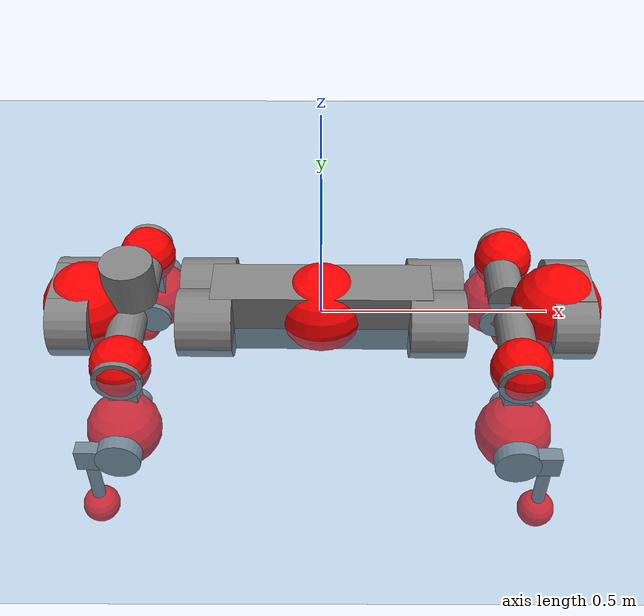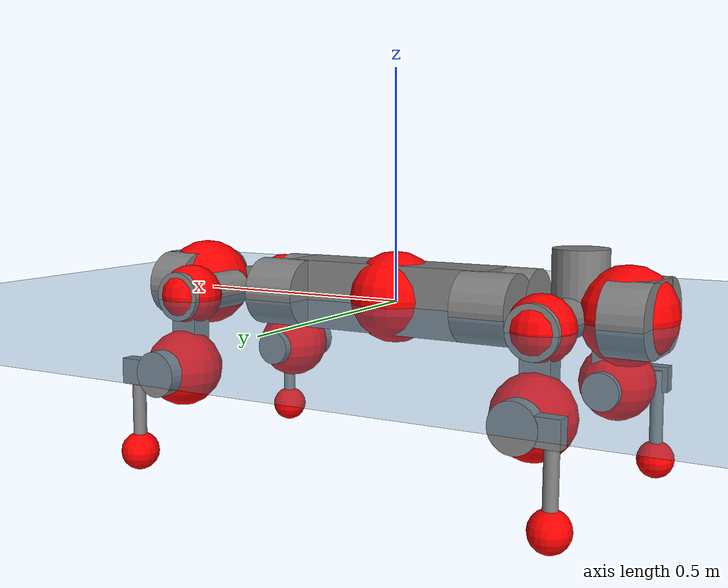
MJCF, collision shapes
<mujoco model="anymal_c">
  <compiler angle="radian" assetdir="assets" balanceinertia="true" inertiafromgeom="false"/>

  <option timestep="0.005" density="1.2" viscosity="2e-05"/>

  <size nkey="1"/>

  <visual>
    <quality shadowsize="8192"/>
    <map shadowclip="0.5"/>
  </visual>

  <default>
    <default class="/">
      <material specular="0" shininess="0.25"/>
      <geom contype="0" conaffinity="0" group="1" solref="-1000 -80"/>
      <site size="0.01 0.005 0.005" group="5"/>
      <general forcelimited="true" forcerange="-80 80" biastype="affine" gainprm="80" biasprm="0 -80 -2"/>
      <default class="anymal_c">
        <joint armature="0.01" damping="0.01" frictionloss="0.1"/>
        <default class="visual">
          <geom type="mesh" group="2"/>
          <default class="visual_zflip"/>
        </default>
        <default class="collision">
          <geom type="cylinder" group="3"/>
          <default class="foot">
            <geom size="0.03 0 0" type="sphere" condim="6" priority="1" friction="0.8 0.02 0.01" solimp="0.015 1 0.03"/>
          </default>
        </default>
      </default>
      <default class="reward_collision_sphere">
        <geom group="5" rgba="1 0 0 1"/>
      </default>
    </default>
  </default>

  <asset>
    <texture type="skybox" colorspace="auto" name="//unnamed_texture_0" builtin="gradient" rgb1="0.95 0.95 0.95" rgb2="0.95 0.95 0.95" width="100" height="600"/>
    <texture type="2d" colorspace="auto" name="texplane" builtin="checker" rgb1="0.345 0.575 0.748" rgb2="0.345 0.575 0.748" markrgb="1 1 1" width="512" height="512"/>
    <texture type="2d" colorspace="linear" name="base" file="base.png"/>
    <texture type="2d" colorspace="linear" name="top_shell" file="top_shell.png"/>
    <texture type="2d" colorspace="linear" name="bottom_shell" file="bottom_shell.png"/>
    <texture type="2d" colorspace="linear" name="remote" file="remote.png"/>
    <texture type="2d" colorspace="linear" name="hatch" file="hatch.png"/>
    <texture type="2d" colorspace="linear" name="handle" file="handle.png"/>
    <texture type="2d" colorspace="linear" name="face" file="face.png"/>
    <texture type="2d" colorspace="linear" name="battery" file="battery.png"/>
    <texture type="2d" colorspace="linear" name="lidar_cage" file="lidar_cage.png"/>
    <texture type="2d" colorspace="linear" name="depth_camera" file="depth_camera.png"/>
    <texture type="2d" colorspace="linear" name="wide_angle_camera" file="wide_angle_camera.png"/>
    <texture type="2d" colorspace="linear" name="lidar" file="lidar.png"/>
    <texture type="2d" colorspace="linear" name="drive" file="drive.png"/>
    <texture type="2d" colorspace="linear" name="hip_l" file="hip_l.png"/>
    <texture type="2d" colorspace="linear" name="shank_l" file="shank_l.png"/>
    <texture type="2d" colorspace="linear" name="foot" file="foot.png"/>
    <texture type="2d" colorspace="linear" name="thigh" file="thigh.png"/>
    <texture type="2d" colorspace="linear" name="shank_r" file="shank_r.png"/>
    <texture type="2d" colorspace="linear" name="hip_r" file="hip_r.png"/>
    <material name="MatPlane" class="/" texture="texplane" texuniform="true" texrepeat="2 2" specular="0.9" shininess="0.5"/>
    <material name="black_plastic" class="/" rgba="0.007 0.007 0.007 1"/>
    <material name="green" class="/" rgba="0.052 0.178 0.033 1"/>
    <material name="red" class="/" rgba="0.178 0.006 0.005 1"/>
    <material name="yellow" class="/" rgba="0.178 0.119 0.006 1"/>
    <material name="lwl" class="/" rgba="0.8 0.8 0.8 1"/>
    <material name="base" class="/" texture="base"/>
    <material name="top_shell" class="/" texture="top_shell"/>
    <material name="bottom_shell" class="/" texture="bottom_shell"/>
    <material name="hip_l" class="/" texture="hip_l"/>
    <material name="thigh" class="/" texture="thigh"/>
    <material name="shank_l" class="/" texture="shank_l"/>
    <material name="foot" class="/" texture="foot"/>
    <material name="hip_r" class="/" texture="hip_r"/>
    <material name="shank" class="/" texture="shank_r"/>
    <material name="hatch" class="/" texture="hatch"/>
    <material name="remote" class="/" texture="remote"/>
    <material name="handle" class="/" texture="handle"/>
    <material name="face" class="/" texture="face"/>
    <material name="depth_camera" class="/" texture="depth_camera"/>
    <material name="wide_angle_camera" class="/" texture="wide_angle_camera"/>
    <material name="battery" class="/" texture="battery"/>
    <material name="lidar_cage" class="/" texture="lidar_cage"/>
    <material name="lidar" class="/" texture="lidar"/>
    <material name="drive" class="/" texture="drive"/>
    <mesh name="base_0" class="/" file="base_0.obj"/>
    <mesh name="base_1" class="/" file="base_1.obj"/>
    <mesh name="base_2" class="/" file="base_2.obj"/>
    <mesh name="base_3" class="/" file="base_3.obj"/>
    <mesh name="base_4" class="/" file="base_4.obj"/>
    <mesh name="base_5" class="/" file="base_5.obj"/>
    <mesh name="top_shell" class="/" file="top_shell.obj"/>
    <mesh name="bottom_shell" class="/" file="bottom_shell.obj"/>
    <mesh name="remote" class="/" file="remote.obj"/>
    <mesh name="handle" class="/" file="handle.obj"/>
    <mesh name="face" class="/" file="face.obj"/>
    <mesh name="wide_angle_camera" class="/" file="wide_angle_camera.obj"/>
    <mesh name="depth_camera" class="/" file="depth_camera.obj"/>
    <mesh name="battery" class="/" file="battery.obj"/>
    <mesh name="lidar_cage" class="/" file="lidar_cage.obj"/>
    <mesh name="lidar" class="/" file="lidar.obj"/>
    <mesh name="drive" class="/" file="drive.obj"/>
    <mesh name="hip_l" class="/" file="hip_l.obj"/>
    <mesh name="thigh" class="/" file="thigh.obj"/>
    <mesh name="shank_l" class="/" file="shank_l.obj"/>
    <mesh name="foot" class="/" file="foot.obj"/>
    <mesh name="hip_r" class="/" file="hip_r.obj"/>
    <mesh name="hatch" class="/" file="hatch.obj"/>
    <mesh name="shank_r" class="/" file="shank_r.obj"/>
  </asset>

  <worldbody>
    <geom name="floor" class="/" size="100 100 0.125" type="plane" group="0" material="MatPlane"/>
    <light name="toplight_shadow" class="/" pos="0 0 5" dir="0.0990148 0.0990148 -0.990148" type="directional" ambient="0.04 0.04 0.04" diffuse="0.55 0.55 0.55" specular="0.12 0.12 0.12"/>
    <light name="toplight_fill" class="/" pos="0 0 5" dir="0.0990148 0.0990148 -0.990148" type="directional" castshadow="false" ambient="0.04 0.04 0.04" diffuse="0.3 0.3 0.3" specular="0.08 0.08 0.08"/>
    <body name="trunk" childclass="anymal_c" pos="0.000867569 0.00123926 0.0107786" quat="0.999988 0.00096679 -0.000955697 -0.00469148">
      <inertial pos="0.00395185 -0.00799489 0.0260141" quat="0.490851 0.53868 0.476303 0.491959" mass="10.0239" diaginertia="1.10071 0.128939 0.0115542"/>
      <joint name="//unnamed_joint_0" type="free" armature="0" damping="0" frictionloss="0"/>
      <geom name="//unnamed_geom_1" class="visual" material="green" mesh="base_0"/>
      <geom name="//unnamed_geom_2" class="visual" material="yellow" mesh="base_1"/>
      <geom name="//unnamed_geom_3" class="visual" material="red" mesh="base_2"/>
      <geom name="//unnamed_geom_4" class="visual" material="black_plastic" mesh="base_3"/>
      <geom name="//unnamed_geom_5" class="visual" material="lwl" mesh="base_4"/>
      <geom name="//unnamed_geom_6" class="visual" material="base" mesh="base_5"/>
      <geom name="trunk_1" class="collision" size="0.239355 0.0577753 0.0742825" type="box"/>
      <geom name="trunk_2" class="collision" size="0.0742825 0.0598387" pos="0.250738 0.0526532 0" quat="0.707107 0 0.707107 0"/>
      <geom name="trunk_3" class="collision" size="0.0742825 0.0598387" pos="-0.250738 0.0526532 0" quat="0.707107 0 0.707107 0"/>
      <geom name="trunk_4" class="collision" size="0.0742825 0.0598387" pos="0.250738 -0.0526532 0" quat="0.707107 0 0.707107 0"/>
      <geom name="trunk_5" class="collision" size="0.0742825 0.0598387" pos="-0.250738 -0.0526532 0" quat="0.707107 0 0.707107 0"/>
      <geom name="//unnamed_geom_12" class="visual" material="top_shell" mesh="top_shell"/>
      <geom name="//unnamed_geom_13" class="visual" material="bottom_shell" mesh="bottom_shell"/>
      <geom name="//unnamed_geom_14" class="visual" material="remote" mesh="remote"/>
      <geom name="//unnamed_geom_15" class="visual" material="handle" mesh="handle"/>
      <geom name="//unnamed_geom_16" class="visual" pos="0.477844 0 0" quat="1 0 0 0" material="face" mesh="face"/>
      <geom name="trunk_6" class="collision" size="0.0453949 0.0577753 0.0742825" pos="0.541249 0 0" type="box"/>
      <geom name="//unnamed_geom_18" class="collision" size="0.0742825 0.0453949" pos="0.541249 0.0526532 0" quat="0.707107 0 0.707107 0"/>
      <geom name="//unnamed_geom_19" class="collision" size="0.0742825 0.0453949" pos="0.541249 -0.0526532 0" quat="0.707107 0 0.707107 0"/>
      <geom name="//unnamed_geom_20" class="visual" pos="0.532175 0 -0.0122541" quat="0.965926 0 0.258819 0" material="depth_camera" mesh="depth_camera"/>
      <geom name="//unnamed_geom_21" class="visual" pos="0.591397 0 0.008549" material="wide_angle_camera" mesh="wide_angle_camera"/>
      <geom name="//unnamed_geom_22" class="visual_zflip" pos="-0.477844 0 0" quat="0 0 0 1" material="face" mesh="face"/>
      <geom name="trunk_7" class="collision" size="0.0453949 0.0577753 0.0742825" pos="-0.541249 0 0" quat="0 0 0 1" type="box"/>
      <geom name="//unnamed_geom_24" class="collision" size="0.0742825 0.0453949" pos="-0.541249 -0.0526532 0" quat="0 -0.707107 0 0.707107"/>
      <geom name="//unnamed_geom_25" class="collision" size="0.0742825 0.0453949" pos="-0.541249 0.0526532 0" quat="0 -0.707107 0 0.707107"/>
      <geom name="//unnamed_geom_26" class="visual" pos="-0.532175 0 -0.0122541" quat="0 -0.258819 0 0.965926" material="depth_camera" mesh="depth_camera"/>
      <geom name="//unnamed_geom_27" class="visual_zflip" pos="-0.591397 0 0.008549" quat="0 0 0 1" material="wide_angle_camera" mesh="wide_angle_camera"/>
      <geom name="//unnamed_geom_28" class="visual" material="battery" mesh="battery"/>
      <geom name="//unnamed_geom_29" class="visual" pos="0 0.0522311 0.021011" quat="0.683013 -0.183013 0.183013 0.683013" material="depth_camera" mesh="depth_camera"/>
      <geom name="//unnamed_geom_30" class="visual" pos="0 -0.0522311 0.021011" quat="0.683013 0.183013 0.183013 -0.683013" material="depth_camera" mesh="depth_camera"/>
      <geom name="//unnamed_geom_31" class="visual" pos="-0.419626 0 0.041974" quat="1 0 0 0" material="lidar_cage" mesh="lidar_cage"/>
      <geom name="trunk_8" class="collision" size="0.0577753 0.0495217" pos="-0.419626 0 0.0762385"/>
      <geom name="//unnamed_geom_33" class="visual" pos="-0.419626 -0.000157397 0.0812069" quat="0.707107 0 0 -0.707107" material="lidar" mesh="lidar"/>
      <geom name="//unnamed_geom_34" class="visual" pos="0.345731 0.0781632 3.12422e-09" quat="0.258819 0.965926 0 0" material="drive" mesh="drive"/>
      <geom name="//unnamed_geom_35" class="visual" pos="0.345731 -0.0781632 -3.12422e-09" quat="0.258819 -0.965926 0 0" material="drive" mesh="drive"/>
      <geom name="//unnamed_geom_36" class="visual" pos="-0.345731 0.0781632 -3.12422e-09" quat="0 0 0.965926 -0.258819" material="drive" mesh="drive"/>
      <geom name="//unnamed_geom_37" class="visual" pos="-0.345731 -0.0781632 3.12422e-09" quat="0 0 -0.965926 -0.258819" material="drive" mesh="drive"/>
      <geom name="//unnamed_geom_38" class="visual" pos="0.133727 0 0.0416885" quat="1 0 0 0" material="hatch" mesh="hatch"/>
      <geom name="//unnamed_geom_39" class="reward_collision_sphere" size="0.0990433"/>
      <geom name="//unnamed_geom_40" class="reward_collision_sphere" size="0.0990433" pos="0.518769 0 0"/>
      <geom name="//unnamed_geom_41" class="reward_collision_sphere" size="0.0990433" pos="-0.518769 0 0"/>
      <site name="imu" pos="0.28679 -0.0183906 0.0633654" size="0.00825361"/>
      <camera name="track" pos="0 -1.50438 0" quat="0.707107 0.707107 0 0" mode="trackcom"/>
      <camera name="ego_camera" pos="0.518769 0 -0.022843" quat="-0.5 -0.5 0.5 0.5"/>
      <body name="LF_HIP" pos="0.34623 0.0764193 -0.00343446" quat="0.259309 0.965794 -0.000118766 0.000223861">
        <inertial pos="0.0745592 -0.00957333 0.00560341" quat="-0.160818 0.68051 -0.157881 0.697221" mass="1.65849" diaginertia="0.0115657 0.00127566 0.000213233"/>
        <joint name="LF_HAA" pos="0 0 0" axis="0.999075 0.0398911 0.0160863" stiffness="0.0324247" range="-0.753244 0.402549" armature="0.00799359" damping="0.0412138" frictionloss="0.0648157"/>
        <geom name="//unnamed_geom_42" class="visual" pos="0 0.000183784 -3.01863e-05" quat="0.258819 -0.965926 0 0" material="hip_l" mesh="hip_l"/>
        <geom name="//unnamed_geom_43" class="visual" pos="0.0690539 -0.0783342 -0.0438867" quat="0.183013 -0.683013 0.683013 0.183013" material="drive" mesh="drive"/>
        <geom name="//unnamed_geom_44" class="collision" size="0.0412681 0.0577753" pos="0.0690539 -0.00899602 -0.00394327" quat="-0.353553 -0.612372 0.612372 -0.353553"/>
        <body name="LF_THIGH" pos="0.0767855 -0.0586669 -0.0326885" quat="0.182503 -0.683052 0.682894 0.183814">
          <inertial pos="0.0364836 0.00189876 -0.14183" quat="0.992304 -0.000895085 -0.0862938 0.0888042" mass="1.90046" diaginertia="0.068101 0.00798861 0.000309036"/>
          <joint name="LF_HFE" pos="0 0 0" axis="0.999993 0.00265239 0.0027686" stiffness="0.0150394" range="-3.04907 3.14813" armature="0.0106751" damping="0" frictionloss="0.0817216"/>
          <geom name="//unnamed_geom_45" class="visual" pos="0.00797099 1.25604e-05 0" quat="0.707107 0 0 -0.707107" material="thigh" mesh="thigh"/>
          <geom name="//unnamed_geom_46" class="collision" size="0.0536485 0.0330144" pos="0.0461128 0 0" quat="0.5 0.5 -0.5 -0.5"/>
          <geom name="//unnamed_geom_47" class="collision" size="0.030951 0.0247608 0.116635" pos="0.0345846 0 -0.0807009" quat="0.707107 0 0 -0.707107" type="box"/>
          <geom name="//unnamed_geom_48" class="visual" pos="0.115628 0 -0.162756" quat="1 0 0 0" material="drive" mesh="drive"/>
          <geom name="//unnamed_geom_49" class="collision" size="0.0412681 0.0577753" pos="0.0349304 0 -0.162756" quat="0.707107 0 0.707107 0"/>
          <geom name="//unnamed_geom_50" class="reward_collision_sphere" size="0.0660289" pos="0.0288205 0 0"/>
          <body name="LF_SHANK" pos="0.114911 -0.000211404 -0.159372" quat="1 0.000136571 -0.000329566 -3.93232e-05">
            <inertial pos="0.0182285 -0.0359687 -0.0455146" quat="0.99244 -0.118608 0.00461993 -0.0312055" mass="0.329458" diaginertia="0.022644 0.0022085 6.54012e-05"/>
            <joint name="LF_KFE" pos="0 0 0" axis="0.999995 0.0018886 -0.00255748" range="-2.90655 3.04143" armature="0.00898059" damping="0.0118132" frictionloss="0.0364281"/>
            <geom name="//unnamed_geom_51" class="visual" pos="0.00259917 0.0138589 0" quat="0.707107 0 0 -0.707107" material="shank_l" mesh="shank_l"/>
            <geom name="LF_kfe_act" class="collision" size="0.0495217 0.0165072" pos="0.0230564 0 0" quat="0.5 0.5 -0.5 -0.5"/>
            <geom name="//unnamed_geom_53" class="collision" size="0.0474574 0.0278559 0.0156819" pos="0.0230564 -0.0432501 0" quat="0.5 0.5 -0.5 -0.5" type="box"/>
            <geom name="//unnamed_geom_54" class="visual" pos="0.0150437 -0.0616888 -0.193006" quat="0.382683 0 0 -0.92388" material="foot" mesh="foot"/>
            <geom name="LF_calf" class="collision" size="0.0144438 0.116584" pos="0.0150443 -0.066155 -0.0965031" quat="0.707107 0 0 -0.707107"/>
            <geom name="LF_foot" class="foot" size="0.0306729" pos="0.0150443 -0.066155 -0.180157" quat="0.707107 0 0 -0.707107"/>
            <geom name="//unnamed_geom_57" class="reward_collision_sphere" size="0.0825361" pos="-0.057641 0 0"/>
            <geom name="//unnamed_geom_58" class="reward_collision_sphere" size="0.0412681" pos="0.0150443 -0.066155 -0.180157"/>
            <site name="LF_foot" class="foot" pos="0.0150443 -0.066155 -0.180157" quat="0.707107 0 0 -0.707107" size="0.00825361"/>
          </body>
        </body>
      </body>
      <body name="RF_HIP" pos="0.350421 -0.0820289 -0.00128575" quat="0.263609 -0.964626 0.00246435 0.000721493">
        <inertial pos="0.0680918 0.0123654 -0.00608644" quat="0.116531 0.65388 0.0955111 0.741444" mass="1.3756" diaginertia="0.0121976 0.00118217 0.000205613"/>
        <joint name="RF_HAA" pos="0 0 0" axis="0.999746 -0.011684 0.0192677" stiffness="0.0395485" range="-0.276979 0.806755" armature="0.00794596" damping="0.0358053" frictionloss="0.0590696"/>
        <geom name="//unnamed_geom_59" class="visual" pos="0 -0.000183782 -3.01862e-05" quat="0.258819 0.965926 0 0" material="hip_r" mesh="hip_r"/>
        <geom name="//unnamed_geom_60" class="visual" pos="0.0690539 0.0783342 -0.0438867" quat="0.183013 0.683013 0.683013 -0.183013" material="drive" mesh="drive"/>
        <geom name="//unnamed_geom_61" class="collision" size="0.0412681 0.0577753" pos="0.0690539 0.00899602 -0.00394327" quat="-0.353553 0.612372 0.612372 0.353553"/>
        <body name="RF_THIGH" pos="0.0711165 0.0595939 -0.025377" quat="0.182008 0.683362 0.682605 -0.184228">
          <inertial pos="0.0392546 0.00121368 -0.138397" quat="0.992216 -0.00754621 -0.0809845 0.0942947" mass="1.57025" diaginertia="0.0629216 0.0078951 0.000243808"/>
          <joint name="RF_HFE" pos="0 0 0" axis="0.999989 0.00110082 -0.00458221" range="-3.14027 3.23564" armature="0.00976304" damping="0.0636205" frictionloss="0.113559"/>
          <geom name="//unnamed_geom_62" class="visual" pos="0.00797099 1.25604e-05 0" quat="0.707107 0 0 -0.707107" material="thigh" mesh="thigh"/>
          <geom name="//unnamed_geom_63" class="collision" size="0.0536485 0.0330144" pos="0.0461128 0 0" quat="0.5 0.5 0.5 0.5"/>
          <geom name="//unnamed_geom_64" class="collision" size="0.030951 0.0247608 0.116635" pos="0.0345846 0 -0.0807009" quat="0.707107 0 0 0.707107" type="box"/>
          <geom name="//unnamed_geom_65" class="visual" pos="0.115628 0 -0.162756" quat="1 0 0 0" material="drive" mesh="drive"/>
          <geom name="//unnamed_geom_66" class="collision" size="0.0412681 0.0577753" pos="0.0349304 0 -0.162756" quat="0.707107 0 0.707107 0"/>
          <geom name="//unnamed_geom_67" class="reward_collision_sphere" size="0.0660289" pos="0.0288205 0 0"/>
          <body name="RF_SHANK" pos="0.126132 -0.00121084 -0.160648" quat="1 -7.35174e-05 -6.87966e-05 -0.000111378">
            <inertial pos="0.00729978 0.0555188 -0.053608" quat="0.994916 0.0900452 -0.0450834 -0.000791233" mass="0.368378" diaginertia="0.0227036 0.00221621 8.13627e-05"/>
            <joint name="RF_KFE" pos="0 0 0" axis="0.999984 0.000476909 0.00563781" range="-3.14338 3.1216" armature="0.00813212" damping="0.0378791" frictionloss="0.0984339"/>
            <geom name="//unnamed_geom_68" class="visual" pos="0.00259915 -0.0138589 0" quat="0.707107 0 0 0.707107" material="shank" mesh="shank_r"/>
            <geom name="RF_kfe_act" class="collision" size="0.0495217 0.0165072" pos="0.0230564 0 0" quat="0.5 0.5 0.5 0.5"/>
            <geom name="//unnamed_geom_70" class="collision" size="0.0474574 0.0278559 0.0156819" pos="0.0230564 0.0432501 0" quat="0.5 0.5 0.5 0.5" type="box"/>
            <geom name="//unnamed_geom_71" class="visual" pos="0.0150449 0.0616888 -0.193006" quat="0.382683 0 0 0.92388" material="foot" mesh="foot"/>
            <geom name="RF_calf" class="collision" size="0.0144438 0.116584" pos="0.0150443 0.066155 -0.0965031" quat="0.707107 0 0 0.707107"/>
            <geom name="RF_foot" class="foot" size="0.0332525" pos="0.0150443 0.066155 -0.180157" quat="0.707107 0 0 0.707107"/>
            <geom name="//unnamed_geom_74" class="reward_collision_sphere" size="0.0825361" pos="-0.057641 0 0"/>
            <geom name="//unnamed_geom_75" class="reward_collision_sphere" size="0.0412681" pos="0.0150443 0.066155 -0.180157"/>
            <site name="RF_foot" class="foot" pos="0.0150443 0.066155 -0.180157" quat="0.707107 0 0 0.707107" size="0.00825361"/>
          </body>
        </body>
      </body>
      <body name="LH_HIP" pos="-0.345744 0.0843398 -0.00638687" quat="0.000514278 9.73919e-05 0.965777 -0.259374">
        <inertial pos="0.0670249 0.0207414 0.00611214" quat="0.127579 0.673169 0.123269 0.717894" mass="1.6362" diaginertia="0.0132543 0.00121363 0.000231263"/>
        <joint name="LH_HAA" pos="0 0 0" axis="0.99908 0.0321225 -0.0284144" stiffness="0.00190862" range="-0.316078 0.529379" armature="0.00470044" damping="0.0262543" frictionloss="0.0796902"/>
        <geom name="//unnamed_geom_76" class="visual" pos="0 -0.000183782 -3.01862e-05" quat="-0.258819 -0.965926 0 0" material="hip_r" mesh="hip_r"/>
        <geom name="//unnamed_geom_77" class="visual" pos="0.0690539 0.0783342 -0.0438867" quat="0.183013 0.683013 0.683013 -0.183013" material="drive" mesh="drive"/>
        <geom name="//unnamed_geom_78" class="collision" size="0.0412681 0.0577753" pos="0.0690539 0.00899602 -0.00394327" quat="-0.353553 0.612372 0.612372 0.353553"/>
        <body name="LH_THIGH" pos="0.0687508 0.0630677 -0.0346535" quat="0.184273 0.682146 0.68426 -0.180301">
          <inertial pos="0.0239868 0.00676129 -0.128921" quat="0.992875 -0.00493942 -0.0798268 0.0883372" mass="1.43607" diaginertia="0.0459292 0.00616507 0.000199258"/>
          <joint name="LH_HFE" pos="0 0 0" axis="0.998383 -0.00577267 -0.0565474" range="-3.02776 3.17106" armature="0.0084354" damping="0.0641463" frictionloss="0.0684901"/>
          <geom name="//unnamed_geom_79" class="visual" pos="0.00797099 1.25604e-05 0" quat="0.707107 0 0 -0.707107" material="thigh" mesh="thigh"/>
          <geom name="//unnamed_geom_80" class="collision" size="0.0536485 0.0330144" pos="0.0461128 0 0" quat="0.5 0.5 -0.5 -0.5"/>
          <geom name="//unnamed_geom_81" class="collision" size="0.030951 0.0247608 0.116635" pos="0.0345846 0 -0.0807009" quat="0.707107 0 0 -0.707107" type="box"/>
          <geom name="//unnamed_geom_82" class="visual" pos="0.115628 0 -0.162756" quat="1 0 0 0" material="drive" mesh="drive"/>
          <geom name="//unnamed_geom_83" class="collision" size="0.0412681 0.0577753" pos="0.0349304 0 -0.162756" quat="0.707107 0 0.707107 0"/>
          <geom name="//unnamed_geom_84" class="reward_collision_sphere" size="0.0660289" pos="0.0288205 0 0"/>
          <body name="LH_SHANK" pos="0.120719 0.00155278 -0.156977" quat="0.999993 -0.00092122 -0.0033184 -0.00139512">
            <inertial pos="0.0167252 0.0397955 -0.0350272" quat="0.986651 0.156184 0.01017 0.0449871" mass="0.365252" diaginertia="0.0224678 0.00252914 7.06627e-05"/>
            <joint name="LH_KFE" pos="0 0 0" axis="0.999985 -0.00546886 -0.000300432" range="-3.13637 3.37776" armature="0.00450241" damping="0.0599702" frictionloss="0.0793107"/>
            <geom name="//unnamed_geom_85" class="visual" pos="0.00259915 -0.0138589 0" quat="-0.707107 0 0 -0.707107" material="shank" mesh="shank_r"/>
            <geom name="LH_kfe_act" class="collision" size="0.0495217 0.0165072" pos="0.0230564 0 0" quat="0.5 0.5 -0.5 -0.5"/>
            <geom name="//unnamed_geom_87" class="collision" size="0.0474574 0.0278559 0.0156819" pos="0.0230564 0.0432501 0" quat="0.5 0.5 -0.5 -0.5" type="box"/>
            <geom name="//unnamed_geom_88" class="visual" pos="0.0150449 0.0616888 -0.193006" quat="-0.382683 0 0 -0.92388" material="foot" mesh="foot"/>
            <geom name="LH_calf" class="collision" size="0.0144438 0.116584" pos="0.0150443 0.066155 -0.0965031" quat="0.707107 0 0 -0.707107"/>
            <geom name="LH_foot" class="foot" size="0.022247" pos="0.0150443 0.066155 -0.180157" quat="0.707107 0 0 -0.707107"/>
            <geom name="//unnamed_geom_91" class="reward_collision_sphere" size="0.0825361" pos="-0.057641 0 0"/>
            <geom name="//unnamed_geom_92" class="reward_collision_sphere" size="0.0412681" pos="0.0150443 0.066155 -0.180157"/>
            <site name="LH_foot" class="foot" pos="0.0150443 0.066155 -0.180157" quat="0.707107 0 0 -0.707107" size="0.00825361"/>
          </body>
        </body>
      </body>
      <body name="RH_HIP" pos="-0.357467 -0.0766963 -0.00927934" quat="-0.000454707 0.000517481 -0.966198 -0.257799">
        <inertial pos="0.0730901 -0.00637303 -0.00544717" quat="-0.138167 0.680307 -0.163994 0.700856" mass="1.5558" diaginertia="0.00901948 0.001047 0.00016357"/>
        <joint name="RH_HAA" pos="0 0 0" axis="0.998242 0.0542994 0.0237428" stiffness="0.00593777" range="-0.649822 0.494192" armature="0.00795815" damping="0.0183254" frictionloss="0.0344919"/>
        <geom name="//unnamed_geom_93" class="visual" pos="0 0.000183784 -3.01863e-05" quat="-0.258819 0.965926 0 0" material="hip_l" mesh="hip_l"/>
        <geom name="//unnamed_geom_94" class="visual" pos="0.0690539 -0.0783342 -0.0438867" quat="-0.183013 0.683013 -0.683013 -0.183013" material="drive" mesh="drive"/>
        <geom name="//unnamed_geom_95" class="collision" size="0.0412681 0.0577753" pos="0.0690539 -0.00899602 -0.00394327" quat="0.353553 0.612372 -0.612372 0.353553"/>
        <body name="RH_THIGH" pos="0.0682055 -0.0565453 -0.0181509" quat="-0.18343 0.682729 -0.683228 -0.18285">
          <inertial pos="0.0325172 0.00434607 -0.131233" quat="0.991095 -0.0127053 -0.107976 0.0768823" mass="2.0116" diaginertia="0.0561293 0.00720157 0.00025736"/>
          <joint name="RH_HFE" pos="0 0 0" axis="0.999872 0.0155606 -0.00382029" stiffness="0.00220674" range="-3.10336 3.28624" armature="0.0090377" damping="0.0154475" frictionloss="0.0866824"/>
          <geom name="//unnamed_geom_96" class="visual" pos="0.00797099 1.25604e-05 0" quat="0.707107 0 0 -0.707107" material="thigh" mesh="thigh"/>
          <geom name="//unnamed_geom_97" class="collision" size="0.0536485 0.0330144" pos="0.0461128 0 0" quat="0.5 0.5 0.5 0.5"/>
          <geom name="//unnamed_geom_98" class="collision" size="0.030951 0.0247608 0.116635" pos="0.0345846 0 -0.0807009" quat="0.707107 0 0 0.707107" type="box"/>
          <geom name="//unnamed_geom_99" class="visual" pos="0.115628 0 -0.162756" quat="1 0 0 0" material="drive" mesh="drive"/>
          <geom name="//unnamed_geom_100" class="collision" size="0.0412681 0.0577753" pos="0.0349304 0 -0.162756" quat="0.707107 0 0.707107 0"/>
          <geom name="//unnamed_geom_101" class="reward_collision_sphere" size="0.0660289" pos="0.0288205 0 0"/>
          <body name="RH_SHANK" pos="0.125534 -0.00713465 -0.156013" quat="0.999982 -0.000394372 -0.00461184 -0.0037624">
            <inertial pos="0.00455842 -0.0447748 -0.0465202" quat="0.993892 -0.0894455 -0.00827546 -0.0641059" mass="0.309516" diaginertia="0.0192552 0.00196828 7.1368e-05"/>
            <joint name="RH_KFE" pos="0 0 0" axis="0.998423 -0.0561236 -0.00110423" stiffness="0.0486589" range="-3.31275 3.15738" armature="0.00886518" damping="0.0522146" frictionloss="0.0872319"/>
            <geom name="//unnamed_geom_102" class="visual" pos="0.00259917 0.0138589 0" quat="0.707107 0 0 -0.707107" material="shank_l" mesh="shank_l"/>
            <geom name="RH_kfe_act" class="collision" size="0.0495217 0.0165072" pos="0.0230564 0 0" quat="0.5 0.5 0.5 0.5"/>
            <geom name="//unnamed_geom_104" class="collision" size="0.0474574 0.0278559 0.0156819" pos="0.0230564 -0.0432501 0" quat="0.5 0.5 0.5 0.5" type="box"/>
            <geom name="//unnamed_geom_105" class="visual" pos="0.0150437 -0.0616888 -0.193006" quat="0.382683 0 0 -0.92388" material="foot" mesh="foot"/>
            <geom name="RH_calf" class="collision" size="0.0144438 0.116584" pos="0.0150443 -0.066155 -0.0965031" quat="0.707107 0 0 0.707107"/>
            <geom name="RH_foot" class="foot" size="0.0256111" pos="0.0150443 -0.066155 -0.180157" quat="0.707107 0 0 0.707107"/>
            <geom name="//unnamed_geom_108" class="reward_collision_sphere" size="0.0825361" pos="-0.057641 0 0"/>
            <geom name="//unnamed_geom_109" class="reward_collision_sphere" size="0.0412681" pos="0.0150443 -0.066155 -0.180157"/>
            <site name="RH_foot" class="foot" pos="0.0150443 -0.066155 -0.180157" quat="0.707107 0 0 0.707107" size="0.00825361"/>
          </body>
        </body>
      </body>
    </body>
  </worldbody>

  <contact>
    <pair class="/" geom1="floor" geom2="LF_foot" name="//unnamed_contact_0"/>
    <pair class="/" geom1="floor" geom2="RF_foot" name="//unnamed_contact_1"/>
    <pair class="/" geom1="floor" geom2="LH_foot" name="//unnamed_contact_2"/>
    <pair class="/" geom1="floor" geom2="RH_foot" name="//unnamed_contact_3"/>
  </contact>

  <actuator>
    <general name="LF_HAA" class="/" joint="LF_HAA" forcerange="-63.5391 63.5391" gainprm="65.6064" biasprm="0 -65.6064 -2.00316"/>
    <general name="LF_HFE" class="/" joint="LF_HFE" forcerange="-66.5532 66.5532" gainprm="65.6064" biasprm="0 -65.6064 -2.00316"/>
    <general name="LF_KFE" class="/" joint="LF_KFE" forcerange="-54.3154 54.3154" gainprm="65.6064" biasprm="0 -65.6064 -2.00316"/>
    <general name="RF_HAA" class="/" joint="RF_HAA" forcerange="-65.2328 65.2328" gainprm="65.6064" biasprm="0 -65.6064 -2.00316"/>
    <general name="RF_HFE" class="/" joint="RF_HFE" forcerange="-55.1654 55.1654" gainprm="65.6064" biasprm="0 -65.6064 -2.00316"/>
    <general name="RF_KFE" class="/" joint="RF_KFE" forcerange="-62.336 62.336" gainprm="65.6064" biasprm="0 -65.6064 -2.00316"/>
    <general name="LH_HAA" class="/" joint="LH_HAA" forcerange="-63.4655 63.4655" gainprm="65.6064" biasprm="0 -65.6064 -2.00316"/>
    <general name="LH_HFE" class="/" joint="LH_HFE" forcerange="-92.3904 92.3904" gainprm="65.6064" biasprm="0 -65.6064 -2.00316"/>
    <general name="LH_KFE" class="/" joint="LH_KFE" forcerange="-43.134 43.134" gainprm="65.6064" biasprm="0 -65.6064 -2.00316"/>
    <general name="RH_HAA" class="/" joint="RH_HAA" forcerange="-67.8499 67.8499" gainprm="65.6064" biasprm="0 -65.6064 -2.00316"/>
    <general name="RH_HFE" class="/" joint="RH_HFE" forcerange="-71.4598 71.4598" gainprm="65.6064" biasprm="0 -65.6064 -2.00316"/>
    <general name="RH_KFE" class="/" joint="RH_KFE" forcerange="-53.3004 53.3004" gainprm="65.6064" biasprm="0 -65.6064 -2.00316"/>
  </actuator>

  <sensor>
    <gyro site="imu" name="imu_angular_velocity"/>
    <velocimeter site="imu" name="imu_linear_velocity"/>
    <framelinvel objtype="site" objname="LF_foot" name="LF_foot_global_linear_velocity"/>
    <framelinvel objtype="site" objname="RF_foot" name="RF_foot_global_linear_velocity"/>
    <framelinvel objtype="site" objname="LH_foot" name="LH_foot_global_linear_velocity"/>
    <framelinvel objtype="site" objname="RH_foot" name="RH_foot_global_linear_velocity"/>
  </sensor>

  <keyframe>
    <key name="home" qpos="0 0 0.55 1 0 0 0 0 0.4 -0.8 0 -0.4 0.8 0 -0.4 0.8 0 0.4 -0.8"/>
  </keyframe>
</mujoco>
